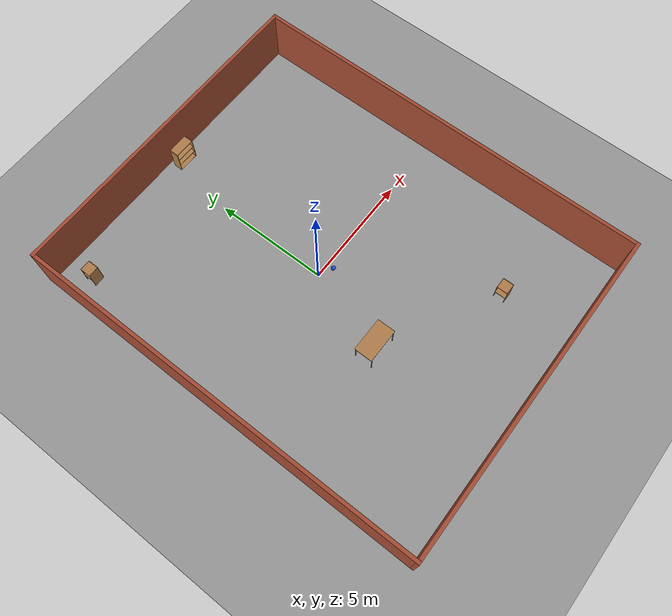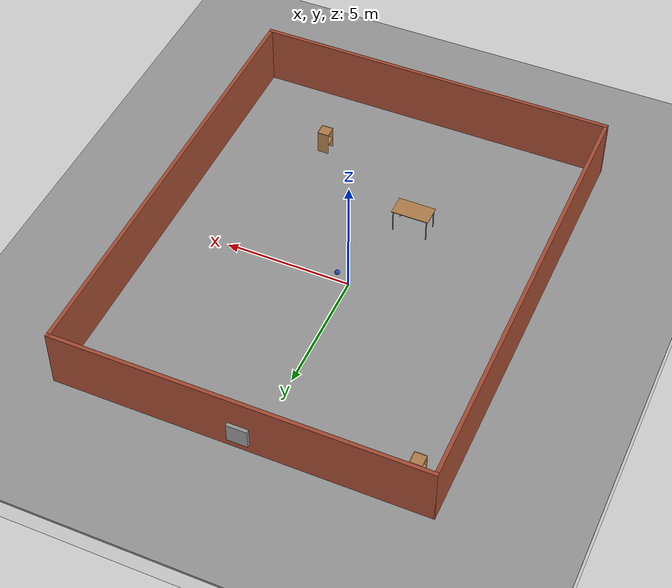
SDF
<sdf version="1.6">
 <world name="default">
  <physics name="default_physics" default="0" type="ode">
   <max_step_size>0.001</max_step_size>
   <real_time_factor>1</real_time_factor>
   <real_time_update_rate>1000</real_time_update_rate>
  </physics>
  <scene><ambient>0.4 0.4 0.4 1</ambient><background>0.7 0.7 0.7 1</background><shadows>1</shadows></scene>
  <light name="sun" type="directional">
   <pose>0 0 10 0 -0 0</pose>
   <diffuse>0.8 0.8 0.8 1</diffuse>
   <specular>0.1 0.1 0.1 1</specular>
   <attenuation>
    <range>1000</range>
    <constant>0.9</constant>
    <linear>0.01</linear>
    <quadratic>0.001</quadratic>
   </attenuation>
   <direction>-0.5 0.5 -1</direction>
  </light>
  <model name="ground_plane">
   <static>1</static>
   <link name="link">
    <collision name="collision">
     <geometry><plane><normal>0 0 1</normal><size>100 100</size></plane></geometry>
     <surface><friction><ode><mu>100</mu><mu2>50</mu2></ode></friction></surface>
    </collision>
    <visual name="visual">
     <cast_shadows>0</cast_shadows>
     <geometry><plane><normal>0 0 1</normal><size>100 100</size></plane></geometry>
     <material>
      <script><uri>file://media/materials/scripts/gazebo.material</uri><name>Gazebo/Grey</name></script>
     </material>
    </visual>
   </link>
   <pose>0 0 -1 0 -0 0</pose>
  </model>
  <model name="miro_toy_ball">
   <link name="link">
    <inertial>
     <mass>0.000419</mass>
     <inertia>
      <ixx>2.79e-06</ixx>
      <ixy>0</ixy>
      <ixz>0</ixz>
      <iyy>2.79e-06</iyy>
      <iyz>0</iyz>
      <izz>2.79e-06</izz>
     </inertia>
    </inertial>
    <collision name="collision"><geometry><sphere><radius>0.1</radius></sphere></geometry></collision>
    <visual name="visual">
     <geometry><sphere><radius>0.1</radius></sphere></geometry>
     <material><script><name>Gazebo/Blue</name><uri>__default__</uri></script></material>
    </visual>
    <velocity_decay><linear>0</linear><angular>0</angular></velocity_decay>
   </link>
   <pose>0.6 -0.3 0.1 0 -0 0</pose>
  </model>
  <gravity>0 0 -9.8</gravity>
  <magnetic_field>6e-06 2.3e-05 -4.2e-05</magnetic_field>
  <atmosphere type="adiabatic"/>
  <spherical_coordinates>
   <surface_model>EARTH_WGS84</surface_model>
   <latitude_deg>0</latitude_deg>
   <longitude_deg>0</longitude_deg>
   <elevation>0</elevation>
   <heading_deg>0</heading_deg>
  </spherical_coordinates>
  <model name="house6">
   <pose>0.45967 -0.569211 0 0 -0 0</pose>
   <link name="Wall_12">
    <collision name="Wall_12_Collision">
     <geometry><box><size>18 0.15 2.5</size></box></geometry>
     <pose>0 0 1.25 0 -0 0</pose>
    </collision>
    <visual name="Wall_12_Visual">
     <pose>0 0 1.25 0 -0 0</pose>
     <geometry><box><size>18 0.15 2.5</size></box></geometry>
     <material>
      <script><uri>file://media/materials/scripts/gazebo.material</uri><name>Gazebo/Bricks</name></script>
      <ambient>1 1 1 1</ambient>
     </material>
     <meta><layer>0</layer></meta>
    </visual>
    <pose>-7.175 0 0 0 -0 1.5708</pose>
   </link>
   <link name="Wall_13">
    <collision name="Wall_13_Collision">
     <geometry><box><size>14.5 0.15 2.5</size></box></geometry>
     <pose>0 0 1.25 0 -0 0</pose>
    </collision>
    <visual name="Wall_13_Visual">
     <pose>0 0 1.25 0 -0 0</pose>
     <geometry><box><size>14.5 0.15 2.5</size></box></geometry>
     <material>
      <script><uri>file://media/materials/scripts/gazebo.material</uri><name>Gazebo/Bricks</name></script>
      <ambient>1 1 1 1</ambient>
     </material>
     <meta><layer>0</layer></meta>
    </visual>
    <pose>0 8.925 0 0 -0 0</pose>
   </link>
   <link name="Wall_7">
    <collision name="Wall_7_Collision">
     <geometry><box><size>14.5 0.15 2.5</size></box></geometry>
     <pose>0 0 1.25 0 -0 0</pose>
    </collision>
    <visual name="Wall_7_Visual">
     <pose>0 0 1.25 0 -0 0</pose>
     <geometry><box><size>14.5 0.15 2.5</size></box></geometry>
     <material>
      <script><uri>file://media/materials/scripts/gazebo.material</uri><name>Gazebo/Bricks</name></script>
      <ambient>1 1 1 1</ambient>
     </material>
     <meta><layer>0</layer></meta>
    </visual>
    <pose>0 -8.925 0 0 -0 0</pose>
   </link>
   <link name="Wall_8">
    <collision name="Wall_8_Collision">
     <geometry><box><size>18 0.15 2.5</size></box></geometry>
     <pose>0 0 1.25 0 -0 0</pose>
    </collision>
    <visual name="Wall_8_Visual">
     <pose>0 0 1.25 0 -0 0</pose>
     <geometry><box><size>18 0.15 2.5</size></box></geometry>
     <material>
      <script><uri>file://media/materials/scripts/gazebo.material</uri><name>Gazebo/Bricks</name></script>
      <ambient>1 1 1 1</ambient>
     </material>
     <meta><layer>0</layer></meta>
    </visual>
    <pose>7.175 0 0 0 -0 1.5708</pose>
   </link>
   <link name="Window_0">
    <collision name="Window_0_Collision">
     <geometry><box><size>0.8 0.17 0.8</size></box></geometry>
     <pose>0 0 0.4 0 -0 0</pose>
    </collision>
    <visual name="Window_0_Visual">
     <pose>0 0 0.4 0 -0 0</pose>
     <geometry><box><size>0.8 0.17 0.8</size></box></geometry>
     <material>
      <script><uri>file://media/materials/scripts/gazebo.material</uri><name>Gazebo/Grey</name></script>
     </material>
    </visual>
    <pose>-0.082086 9.05329 0.5 0 -0 0</pose>
   </link>
   <static>1</static>
  </model>
  <model name="table">
   <static>1</static>
   <link name="link">
    <collision name="surface">
     <pose>0 0 1 0 -0 0</pose>
     <geometry><box><size>1.5 0.8 0.03</size></box></geometry>
     <surface><friction><ode><mu>0.6</mu><mu2>0.6</mu2></ode></friction></surface>
    </collision>
    <visual name="visual1">
     <pose>0 0 1 0 -0 0</pose>
     <geometry><box><size>1.5 0.8 0.03</size></box></geometry>
     <material>
      <script><uri>file://media/materials/scripts/gazebo.material</uri><name>Gazebo/Wood</name></script>
     </material>
    </visual>
    <collision name="front_left_leg">
     <pose>0.68 0.38 0.5 0 -0 0</pose>
     <geometry><cylinder><radius>0.02</radius><length>1</length></cylinder></geometry>
    </collision>
    <visual name="front_left_leg">
     <pose>0.68 0.38 0.5 0 -0 0</pose>
     <geometry><cylinder><radius>0.02</radius><length>1</length></cylinder></geometry>
     <material>
      <script><uri>file://media/materials/scripts/gazebo.material</uri><name>Gazebo/Grey</name></script>
     </material>
    </visual>
    <collision name="front_right_leg">
     <pose>0.68 -0.38 0.5 0 -0 0</pose>
     <geometry><cylinder><radius>0.02</radius><length>1</length></cylinder></geometry>
    </collision>
    <visual name="front_right_leg">
     <pose>0.68 -0.38 0.5 0 -0 0</pose>
     <geometry><cylinder><radius>0.02</radius><length>1</length></cylinder></geometry>
     <material>
      <script><uri>file://media/materials/scripts/gazebo.material</uri><name>Gazebo/Grey</name></script>
     </material>
    </visual>
    <collision name="back_right_leg">
     <pose>-0.68 -0.38 0.5 0 -0 0</pose>
     <geometry><cylinder><radius>0.02</radius><length>1</length></cylinder></geometry>
    </collision>
    <visual name="back_right_leg">
     <pose>-0.68 -0.38 0.5 0 -0 0</pose>
     <geometry><cylinder><radius>0.02</radius><length>1</length></cylinder></geometry>
     <material>
      <script><uri>file://media/materials/scripts/gazebo.material</uri><name>Gazebo/Grey</name></script>
     </material>
    </visual>
    <collision name="back_left_leg">
     <pose>-0.68 0.38 0.5 0 -0 0</pose>
     <geometry><cylinder><radius>0.02</radius><length>1</length></cylinder></geometry>
    </collision>
    <visual name="back_left_leg">
     <pose>-0.68 0.38 0.5 0 -0 0</pose>
     <geometry><cylinder><radius>0.02</radius><length>1</length></cylinder></geometry>
     <material>
      <script><uri>file://media/materials/scripts/gazebo.material</uri><name>Gazebo/Grey</name></script>
     </material>
    </visual>
   </link>
   <pose>-1.10394 -3.62044 0 0 -0 0</pose>
  </model>
  <model name="cabinet">
   <static>1</static>
   <link name="cabinet_bottom_plate">
    <inertial>
     <pose>0 0 -1 0 -0 0</pose>
     <inertia><ixx>2.05</ixx><ixy>0</ixy><ixz>0</ixz><iyy>2.05</iyy><iyz>0</iyz><izz>2.05</izz></inertia>
     <mass>25</mass>
    </inertial>
    <collision name="cabinet_bottom_plate_geom">
     <pose>0 0 0.01 0 -0 0</pose>
     <geometry><box><size>0.45 0.45 0.02</size></box></geometry>
    </collision>
    <visual name="cabinet_bottom_plate_geom_visual">
     <pose>0 0 0.01 0 -0 0</pose>
     <geometry><box><size>0.45 0.45 0.02</size></box></geometry>
     <material>
      <script><uri>file://media/materials/scripts/gazebo.material</uri><name>Gazebo/Wood</name></script>
     </material>
    </visual>
    <collision name="cabinet_bottom_plate_geom_cabinet_back_plate">
     <pose>0.235 0 0.51 0 -0 0</pose>
     <geometry><box><size>0.02 0.45 1.02</size></box></geometry>
    </collision>
    <visual name="cabinet_bottom_plate_geom_cabinet_back_plate_visual">
     <pose>0.235 0 0.51 0 -0 0</pose>
     <geometry><box><size>0.02 0.45 1.02</size></box></geometry>
     <material>
      <script><uri>file://media/materials/scripts/gazebo.material</uri><name>Gazebo/Wood</name></script>
     </material>
    </visual>
    <collision name="cabinet_bottom_plate_geom_cabinet_left_plate">
     <pose>0 0.235 0.51 0 -0 0</pose>
     <geometry><box><size>0.45 0.02 1.02</size></box></geometry>
    </collision>
    <visual name="cabinet_bottom_plate_geom_cabinet_left_plate_visual">
     <pose>0 0.235 0.51 0 -0 0</pose>
     <geometry><box><size>0.45 0.02 1.02</size></box></geometry>
     <material>
      <script><uri>file://media/materials/scripts/gazebo.material</uri><name>Gazebo/Wood</name></script>
     </material>
    </visual>
    <collision name="cabinet_bottom_plate_geom_cabinet_middle_plate">
     <pose>0 0 0.51 0 -0 0</pose>
     <geometry><box><size>0.45 0.45 0.02</size></box></geometry>
    </collision>
    <visual name="cabinet_bottom_plate_geom_cabinet_middle_plate_visual">
     <pose>0 0 0.51 0 -0 0</pose>
     <geometry><box><size>0.45 0.45 0.02</size></box></geometry>
     <material>
      <script><uri>file://media/materials/scripts/gazebo.material</uri><name>Gazebo/Wood</name></script>
     </material>
    </visual>
    <collision name="cabinet_bottom_plate_geom_cabinet_right_plate">
     <pose>0 -0.235 0.51 0 -0 0</pose>
     <geometry><box><size>0.45 0.02 1.02</size></box></geometry>
    </collision>
    <visual name="cabinet_bottom_plate_geom_cabinet_right_plate_visual">
     <pose>0 -0.235 0.51 0 -0 0</pose>
     <geometry><box><size>0.45 0.02 1.02</size></box></geometry>
     <material>
      <script><uri>file://media/materials/scripts/gazebo.material</uri><name>Gazebo/Wood</name></script>
     </material>
    </visual>
    <collision name="cabinet_bottom_plate_geom_cabinet_top_plate">
     <pose>0 0 1.01 0 -0 0</pose>
     <geometry><box><size>0.45 0.45 0.02</size></box></geometry>
    </collision>
    <visual name="cabinet_bottom_plate_geom_cabinet_top_plate_visual">
     <pose>0 0 1.01 0 -0 0</pose>
     <geometry><box><size>0.45 0.45 0.02</size></box></geometry>
     <material>
      <script><uri>file://media/materials/scripts/gazebo.material</uri><name>Gazebo/Wood</name></script>
     </material>
    </visual>
   </link>
   <pose>-5.61664 7.03892 0 0 -0 0</pose>
  </model>
  <model name="bookshelf">
   <static>1</static>
   <link name="link">
    <inertial><mass>1</mass></inertial>
    <collision name="back">
     <pose>0 0.005 0.6 0 -0 0</pose>
     <geometry><box><size>0.9 0.01 1.2</size></box></geometry>
    </collision>
    <visual name="visual1">
     <pose>0 0.005 0.6 0 -0 0</pose>
     <geometry><box><size>0.9 0.01 1.2</size></box></geometry>
     <material>
      <script><uri>file://media/materials/scripts/gazebo.material</uri><name>Gazebo/Wood</name></script>
     </material>
    </visual>
    <collision name="left_side">
     <pose>0.45 -0.195 0.6 0 -0 0</pose>
     <geometry><box><size>0.02 0.4 1.2</size></box></geometry>
    </collision>
    <visual name="visual2">
     <pose>0.45 -0.195 0.6 0 -0 0</pose>
     <geometry><box><size>0.02 0.4 1.2</size></box></geometry>
     <material>
      <script><uri>file://media/materials/scripts/gazebo.material</uri><name>Gazebo/Wood</name></script>
     </material>
    </visual>
    <collision name="right_side">
     <pose>-0.45 -0.195 0.6 0 -0 0</pose>
     <geometry><box><size>0.02 0.4 1.2</size></box></geometry>
    </collision>
    <visual name="visual3">
     <pose>-0.45 -0.195 0.6 0 -0 0</pose>
     <geometry><box><size>0.02 0.4 1.2</size></box></geometry>
     <material>
      <script><uri>file://media/materials/scripts/gazebo.material</uri><name>Gazebo/Wood</name></script>
     </material>
    </visual>
    <collision name="bottom">
     <pose>0 -0.195 0.03 0 -0 0</pose>
     <geometry><box><size>0.88 0.4 0.06</size></box></geometry>
    </collision>
    <visual name="visual4">
     <pose>0 -0.195 0.03 0 -0 0</pose>
     <geometry><box><size>0.88 0.4 0.06</size></box></geometry>
     <material>
      <script><uri>file://media/materials/scripts/gazebo.material</uri><name>Gazebo/Wood</name></script>
     </material>
    </visual>
    <collision name="top">
     <pose>0 -0.195 1.19 0 -0 0</pose>
     <geometry><box><size>0.88 0.4 0.02</size></box></geometry>
    </collision>
    <visual name="visual5">
     <pose>0 -0.195 1.19 0 -0 0</pose>
     <geometry><box><size>0.88 0.4 0.02</size></box></geometry>
     <material>
      <script><uri>file://media/materials/scripts/gazebo.material</uri><name>Gazebo/Wood</name></script>
     </material>
    </visual>
    <collision name="low_shelf">
     <pose>0 -0.195 0.43 0 -0 0</pose>
     <geometry><box><size>0.88 0.4 0.02</size></box></geometry>
    </collision>
    <visual name="visual6">
     <pose>0 -0.195 0.43 0 -0 0</pose>
     <geometry><box><size>0.88 0.4 0.02</size></box></geometry>
     <material>
      <script><uri>file://media/materials/scripts/gazebo.material</uri><name>Gazebo/Wood</name></script>
     </material>
    </visual>
    <collision name="high_shelf">
     <pose>0 -0.195 0.8 0 -0 0</pose>
     <geometry><box><size>0.88 0.4 0.02</size></box></geometry>
    </collision>
    <visual name="visual7">
     <pose>0 -0.195 0.8 0 -0 0</pose>
     <geometry><box><size>0.88 0.4 0.02</size></box></geometry>
     <material>
      <script><uri>file://media/materials/scripts/gazebo.material</uri><name>Gazebo/Wood</name></script>
     </material>
    </visual>
   </link>
   <pose>0.731345 8.05964 0 0 -0 0</pose>
  </model>
  <model name="ground_plane_0">
   <static>1</static>
   <link name="link">
    <collision name="collision">
     <geometry><plane><normal>0 0 1</normal><size>100 100</size></plane></geometry>
     <surface><friction><ode><mu>100</mu><mu2>50</mu2></ode></friction></surface>
    </collision>
    <visual name="visual">
     <cast_shadows>0</cast_shadows>
     <geometry><plane><normal>0 0 1</normal><size>100 100</size></plane></geometry>
     <material>
      <script><uri>file://media/materials/scripts/gazebo.material</uri><name>Gazebo/Grey</name></script>
     </material>
    </visual>
   </link>
   <pose>2.66332 -7.19827 0 0 -0 0</pose>
  </model>
  <model name="cabinet_0">
   <static>1</static>
   <link name="cabinet_bottom_plate">
    <inertial>
     <pose>0 0 -1 0 -0 0</pose>
     <inertia><ixx>2.05</ixx><ixy>0</ixy><ixz>0</ixz><iyy>2.05</iyy><iyz>0</iyz><izz>2.05</izz></inertia>
     <mass>25</mass>
    </inertial>
    <collision name="cabinet_bottom_plate_geom">
     <pose>0 0 0.01 0 -0 0</pose>
     <geometry><box><size>0.45 0.45 0.02</size></box></geometry>
    </collision>
    <visual name="cabinet_bottom_plate_geom_visual">
     <pose>0 0 0.01 0 -0 0</pose>
     <geometry><box><size>0.45 0.45 0.02</size></box></geometry>
     <material>
      <script><uri>file://media/materials/scripts/gazebo.material</uri><name>Gazebo/Wood</name></script>
     </material>
    </visual>
    <collision name="cabinet_bottom_plate_geom_cabinet_back_plate">
     <pose>0.235 0 0.51 0 -0 0</pose>
     <geometry><box><size>0.02 0.45 1.02</size></box></geometry>
    </collision>
    <visual name="cabinet_bottom_plate_geom_cabinet_back_plate_visual">
     <pose>0.235 0 0.51 0 -0 0</pose>
     <geometry><box><size>0.02 0.45 1.02</size></box></geometry>
     <material>
      <script><uri>file://media/materials/scripts/gazebo.material</uri><name>Gazebo/Wood</name></script>
     </material>
    </visual>
    <collision name="cabinet_bottom_plate_geom_cabinet_left_plate">
     <pose>0 0.235 0.51 0 -0 0</pose>
     <geometry><box><size>0.45 0.02 1.02</size></box></geometry>
    </collision>
    <visual name="cabinet_bottom_plate_geom_cabinet_left_plate_visual">
     <pose>0 0.235 0.51 0 -0 0</pose>
     <geometry><box><size>0.45 0.02 1.02</size></box></geometry>
     <material>
      <script><uri>file://media/materials/scripts/gazebo.material</uri><name>Gazebo/Wood</name></script>
     </material>
    </visual>
    <collision name="cabinet_bottom_plate_geom_cabinet_middle_plate">
     <pose>0 0 0.51 0 -0 0</pose>
     <geometry><box><size>0.45 0.45 0.02</size></box></geometry>
    </collision>
    <visual name="cabinet_bottom_plate_geom_cabinet_middle_plate_visual">
     <pose>0 0 0.51 0 -0 0</pose>
     <geometry><box><size>0.45 0.45 0.02</size></box></geometry>
     <material>
      <script><uri>file://media/materials/scripts/gazebo.material</uri><name>Gazebo/Wood</name></script>
     </material>
    </visual>
    <collision name="cabinet_bottom_plate_geom_cabinet_right_plate">
     <pose>0 -0.235 0.51 0 -0 0</pose>
     <geometry><box><size>0.45 0.02 1.02</size></box></geometry>
    </collision>
    <visual name="cabinet_bottom_plate_geom_cabinet_right_plate_visual">
     <pose>0 -0.235 0.51 0 -0 0</pose>
     <geometry><box><size>0.45 0.02 1.02</size></box></geometry>
     <material>
      <script><uri>file://media/materials/scripts/gazebo.material</uri><name>Gazebo/Wood</name></script>
     </material>
    </visual>
    <collision name="cabinet_bottom_plate_geom_cabinet_top_plate">
     <pose>0 0 1.01 0 -0 0</pose>
     <geometry><box><size>0.45 0.45 0.02</size></box></geometry>
    </collision>
    <visual name="cabinet_bottom_plate_geom_cabinet_top_plate_visual">
     <pose>0 0 1.01 0 -0 0</pose>
     <geometry><box><size>0.45 0.45 0.02</size></box></geometry>
     <material>
      <script><uri>file://media/materials/scripts/gazebo.material</uri><name>Gazebo/Wood</name></script>
     </material>
    </visual>
   </link>
   <pose>3.78595 -6.32924 0 0 -0 0</pose>
  </model>
 </world>
</sdf>
